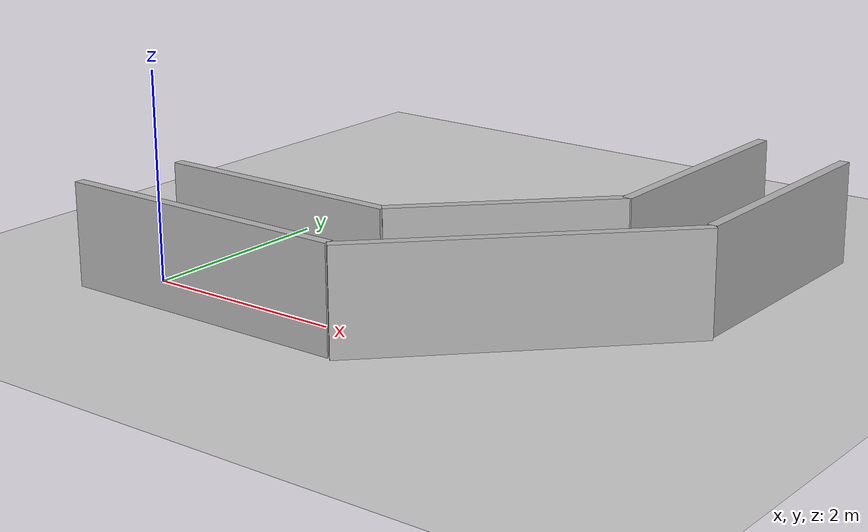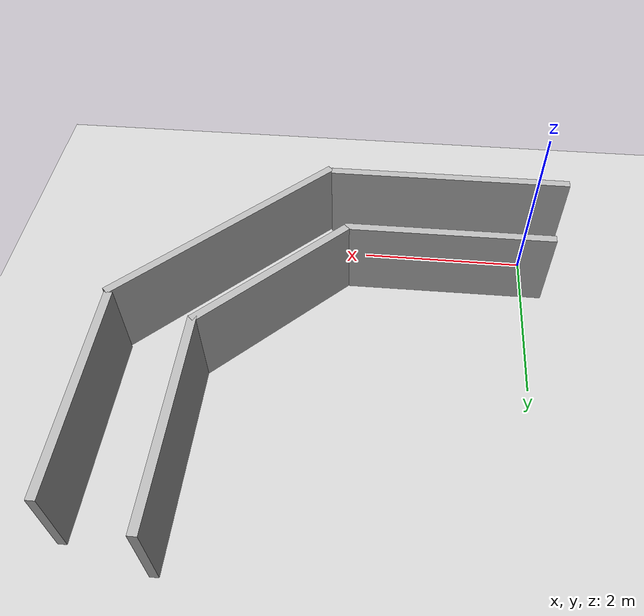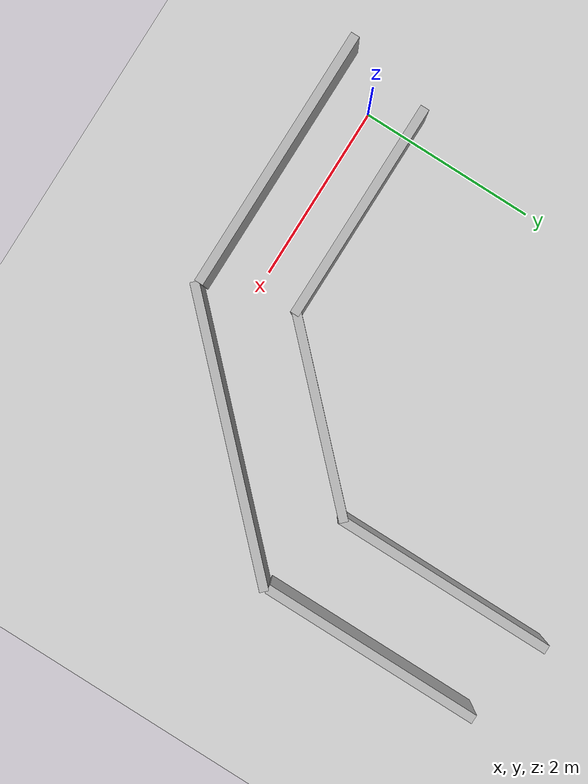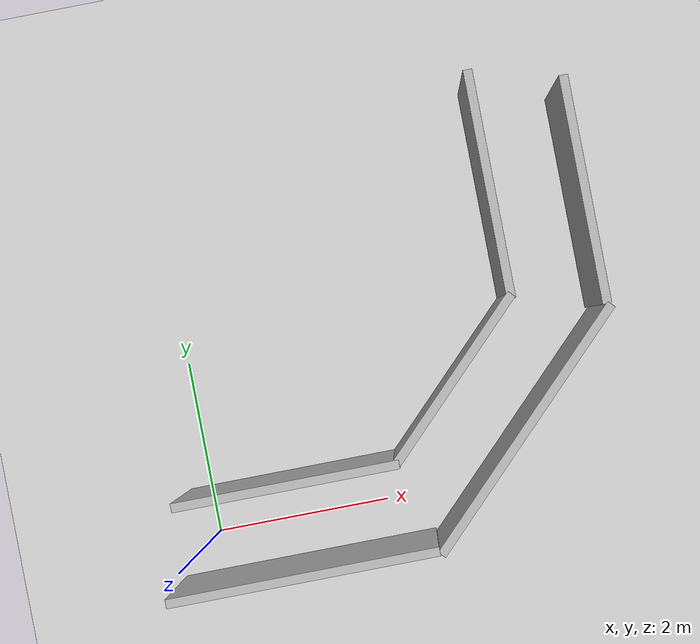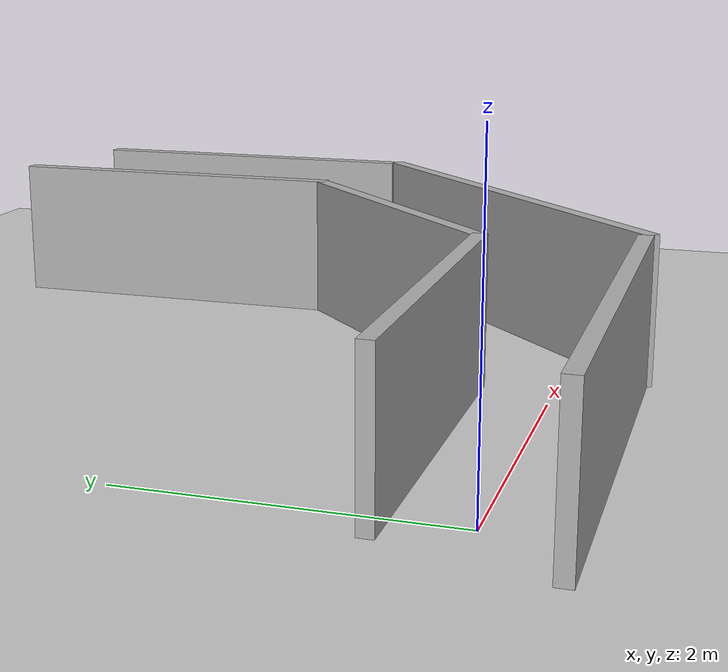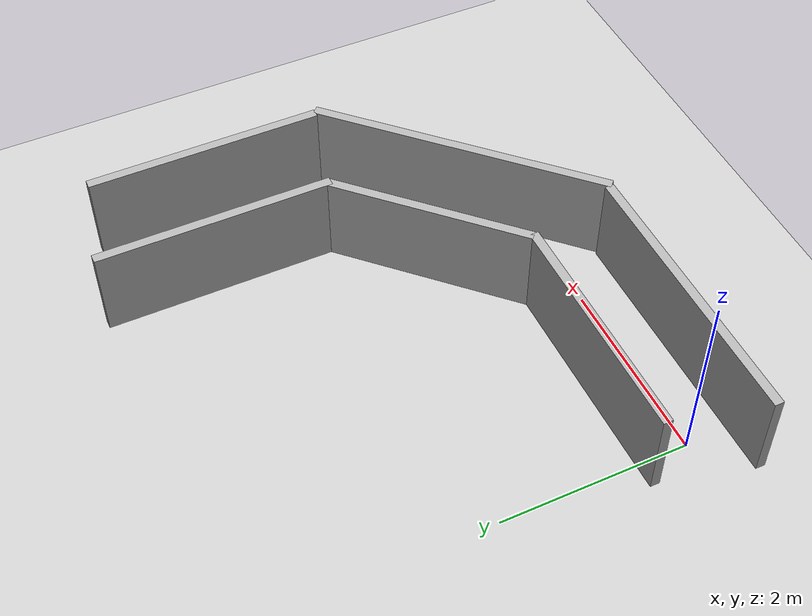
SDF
<sdf version="1.6">
 <world name="empty">
  <physics name="1ms" type="ode">
   <max_step_size>0.001</max_step_size>
   <real_time_factor>1</real_time_factor>
   <real_time_update_rate>1000</real_time_update_rate>
  </physics>
  <plugin name="gz::sim::systems::Physics" filename="ignition-gazebo-physics-system"/>
  <plugin name="gz::sim::systems::UserCommands" filename="ignition-gazebo-user-commands-system"/>
  <plugin name="gz::sim::systems::SceneBroadcaster" filename="ignition-gazebo-scene-broadcaster-system"/>
  <plugin name="gz::sim::systems::Contact" filename="ignition-gazebo-contact-system"/>
  <plugin filename="libignition-gazebo-imu-system.so" name="ignition::gazebo::systems::Imu"/>
  <plugin filename="ignition-gazebo-sensors-system" name="ignition::gazebo::systems::Sensors">
   <render_engine>ogre2</render_engine>
  </plugin>
  <gravity>0 0 -9.8</gravity>
  <magnetic_field>6e-06 2.3e-05 -4.2e-05</magnetic_field>
  <atmosphere type="adiabatic"/>
  <scene><ambient>0.4 0.4 0.4 1</ambient><background>0.7 0.7 0.7 1</background><shadows>true</shadows></scene>
  <model name="ground_plane">
   <static>true</static>
   <link name="link">
    <collision name="collision">
     <geometry><plane><normal>0 0 1</normal><size>100 100</size></plane></geometry>
    </collision>
    <visual name="visual">
     <geometry><plane><normal>0 0 1</normal><size>100 100</size></plane></geometry>
     <material>
      <ambient>0.8 0.8 0.8 1</ambient>
      <diffuse>0.8 0.8 0.8 1</diffuse>
      <specular>0.8 0.8 0.8 1</specular>
     </material>
    </visual>
    <inertial>
     <mass>1</mass>
     <inertia><ixx>1</ixx><ixy>0</ixy><ixz>0</ixz><iyy>1</iyy><iyz>0</iyz><izz>1</izz></inertia>
    </inertial>
   </link>
  </model>
  <light name="sun" type="directional">
   <pose>0 0 10 0 -0 0</pose>
   <intensity>1</intensity>
   <direction>-0.5 0.1 -0.9</direction>
   <diffuse>0.8 0.8 0.8 1</diffuse>
   <specular>0.2 0.2 0.2 1</specular>
   <attenuation>
    <range>1000</range>
    <linear>0.01</linear>
    <constant>0.90000000000000002</constant>
    <quadratic>0.001</quadratic>
   </attenuation>
   <spot><inner_angle>0</inner_angle><outer_angle>0</outer_angle><falloff>0</falloff></spot>
  </light>
  <model name="zigzag_track">
   <static>true</static>
   <link name="track">
    <pose>1.0 0.5 0.5 0 0 0</pose>
    <visual name="left_wall_seg1_visual">
     <geometry><box><size>2.5 0.1 1</size></box></geometry>
     <material><ambient>0.7 0.7 0.7 1</ambient><diffuse>0.7 0.7 0.7 1</diffuse></material>
    </visual>
   </link>
   <link name="right_wall_seg1">
    <pose>1.0 -0.5 0.5 0 0 0</pose>
    <visual name="visual">
     <geometry><box><size>3.0 0.1 1</size></box></geometry>
     <material><ambient>0.7 0.7 0.7 1</ambient><diffuse>0.7 0.7 0.7 1</diffuse></material>
    </visual>
   </link>
   <link name="left_wall_seg2">
    <pose>3.0003 1.2875 0.5 0 0 0.7854</pose>
    <visual name="visual">
     <geometry><box><size>2.2 0.1 1</size></box></geometry>
     <material><ambient>0.7 0.7 0.7 1</ambient><diffuse>0.7 0.7 0.7 1</diffuse></material>
    </visual>
   </link>
   <link name="right_wall_seg2">
    <pose>3.6625 0.6053 0.5 0 0 0.7854</pose>
    <visual name="visual">
     <geometry><box><size>3.25 0.1 1</size></box></geometry>
     <material><ambient>0.7 0.7 0.7 1</ambient><diffuse>0.7 0.7 0.7 1</diffuse></material>
    </visual>
   </link>
   <link name="left_wall_seg3">
    <pose>3.7678 3.2678 0.5 0 0 1.5708</pose>
    <visual name="visual">
     <geometry><box><size>2.5 0.1 1</size></box></geometry>
     <material><ambient>0.7 0.7 0.7 1</ambient><diffuse>0.7 0.7 0.7 1</diffuse></material>
    </visual>
   </link>
   <link name="right_wall_seg3">
    <pose>4.7678 3.0178 0.5 0 0 1.5708</pose>
    <visual name="visual">
     <geometry><box><size>2.5 0.1 1</size></box></geometry>
     <material><ambient>0.7 0.7 0.7 1</ambient><diffuse>0.7 0.7 0.7 1</diffuse></material>
    </visual>
   </link>
  </model>
 </world>
</sdf>
